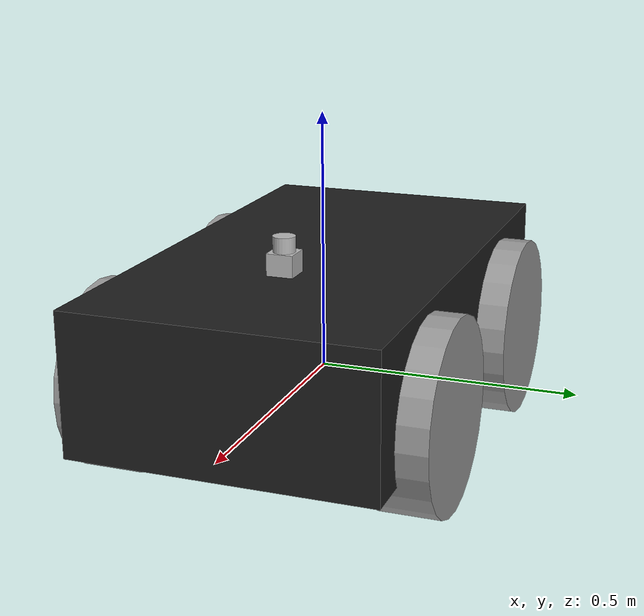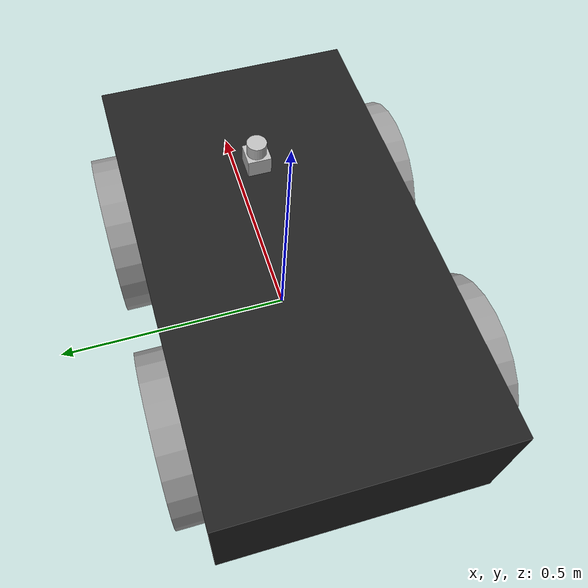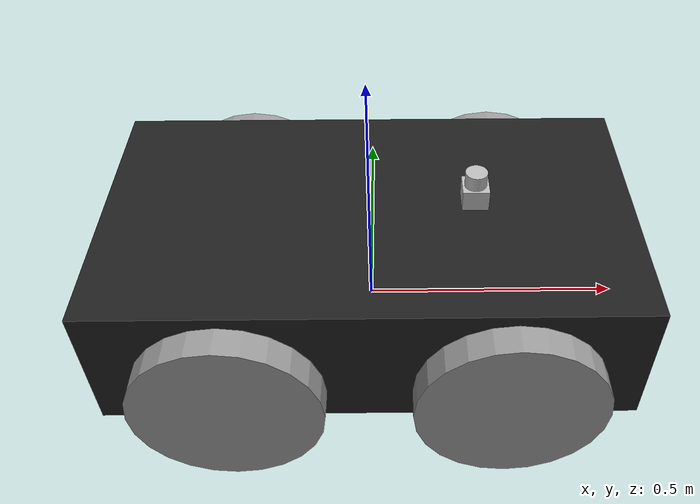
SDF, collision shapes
<?xml version='1.0'?>
<sdf version='1.7'>
  <model name='husky_lidar'>

  <!--################### LINKS ########################-->
    <link name='back_left_wheel'>
      <pose>-0.256 0.285475 0.035 0 -0 0</pose>
      <inertial>
        <mass>2.6357</mass>
        <pose>0 0 0 0 -0 0</pose>
        <inertia>
          <ixx>0.0246688</ixx>
          <ixy>0</ixy>
          <ixz>0</ixz>
          <iyy>0.0246688</iyy>
          <iyz>0</iyz>
          <izz>0.0441058</izz>
        </inertia>
      </inertial>
      <self_collide>0</self_collide>
      <enable_wind>0</enable_wind>
      <kinematic>0</kinematic>
      <visual name='back_left_wheel'>
        <pose>0 0 0 -3.14159 0 0</pose>
        <geometry>
          <mesh>
            <uri>model://husky/meshes/wheel.stl</uri>
          </mesh>
        </geometry>
        <material>
          <script>
            <name>Gazebo/Grey</name>
            <uri>__default__</uri>
          </script>
          <shader type='pixel'/>
        </material>
        <transparency>0</transparency>
        <cast_shadows>1</cast_shadows>
      </visual>
      <collision name='back_left_wheel_collision'>
        <laser_retro>0</laser_retro>
        <max_contacts>10</max_contacts>
        <pose>0 0 0 -1.5707 0 0</pose>
        <geometry>
          <cylinder>
            <radius>0.17775</radius>
            <length>0.1143</length>
          </cylinder>
        </geometry>
        <surface>
          <friction>
            <ode>
              <mu>100000</mu>
              <mu2>100000</mu2>
              <fdir1>0 0 0</fdir1>
              <slip1>0</slip1>
              <slip2>0</slip2>
            </ode>
            <torsional>
              <coefficient>1</coefficient>
              <patch_radius>0</patch_radius>
              <surface_radius>0</surface_radius>
              <use_patch_radius>1</use_patch_radius>
              <ode>
                <slip>0</slip>
              </ode>
            </torsional>
          </friction>
          <bounce>
            <restitution_coefficient>0</restitution_coefficient>
            <threshold>1e+06</threshold>
          </bounce>
          <contact>
            <collide_without_contact>0</collide_without_contact>
            <collide_without_contact_bitmask>1</collide_without_contact_bitmask>
            <collide_bitmask>1</collide_bitmask>
            <ode>
              <soft_cfm>0</soft_cfm>
              <soft_erp>0.2</soft_erp>
              <kp>1e+13</kp>
              <kd>1</kd>
              <max_vel>0.01</max_vel>
              <min_depth>0</min_depth>
            </ode>
            <bullet>
              <split_impulse>1</split_impulse>
              <split_impulse_penetration_threshold>-0.01</split_impulse_penetration_threshold>
              <soft_cfm>0</soft_cfm>
              <soft_erp>0.2</soft_erp>
              <kp>1e+13</kp>
              <kd>1</kd>
            </bullet>
          </contact>
        </surface>
      </collision>
    </link>

    <link name='back_right_wheel'>
      <pose>-0.256 -0.285475 0.035 0 -0 0</pose>
      <inertial>
        <mass>2.6357</mass>
        <pose>0 0 0 0 -0 0</pose>
        <inertia>
          <ixx>0.0246688</ixx>
          <ixy>0</ixy>
          <ixz>0</ixz>
          <iyy>0.0246688</iyy>
          <iyz>0</iyz>
          <izz>0.0441058</izz>
        </inertia>
      </inertial>
      <self_collide>0</self_collide>
      <enable_wind>0</enable_wind>
      <kinematic>0</kinematic>
      <visual name='back_right_wheel'>
        <pose>0 0 0 -3.14159 0 0</pose>
        <geometry>
          <mesh>
            <uri>model://husky/meshes/wheel.stl</uri>
          </mesh>
        </geometry>
        <material>
          <script>
            <name>Gazebo/Grey</name>
            <uri>__default__</uri>
          </script>
          <shader type='pixel'/>
        </material>
        <transparency>0</transparency>
        <cast_shadows>1</cast_shadows>
      </visual>
      <collision name='back_right_wheel_collision'>
        <laser_retro>0</laser_retro>
        <max_contacts>10</max_contacts>
        <pose>0 0 0 -1.5707 0 0</pose>
        <geometry>
          <cylinder>
            <radius>0.17775</radius>
            <length>0.1143</length>
          </cylinder>
        </geometry>
        <surface>
          <friction>
            <ode>
              <mu>100000</mu>
              <mu2>100000</mu2>
              <fdir1>0 0 0</fdir1>
              <slip1>0</slip1>
              <slip2>0</slip2>
            </ode>
            <torsional>
              <coefficient>1</coefficient>
              <patch_radius>0</patch_radius>
              <surface_radius>0</surface_radius>
              <use_patch_radius>1</use_patch_radius>
              <ode>
                <slip>0</slip>
              </ode>
            </torsional>
          </friction>
          <bounce>
            <restitution_coefficient>0</restitution_coefficient>
            <threshold>1e+06</threshold>
          </bounce>
          <contact>
            <collide_without_contact>0</collide_without_contact>
            <collide_without_contact_bitmask>1</collide_without_contact_bitmask>
            <collide_bitmask>1</collide_bitmask>
            <ode>
              <soft_cfm>0</soft_cfm>
              <soft_erp>0.2</soft_erp>
              <kp>1e+13</kp>
              <kd>1</kd>
              <max_vel>0.01</max_vel>
              <min_depth>0</min_depth>
            </ode>
            <bullet>
              <split_impulse>1</split_impulse>
              <split_impulse_penetration_threshold>-0.01</split_impulse_penetration_threshold>
              <soft_cfm>0</soft_cfm>
              <soft_erp>0.2</soft_erp>
              <kp>1e+13</kp>
              <kd>1</kd>
            </bullet>
          </contact>
        </surface>
      </collision>
    </link>

    <link name='base_link'>
      <inertial>
        <mass>33.855</mass>
        <pose>-0.085613 -0.00084 0.238145 0 -0 0</pose>
        <inertia>
          <ixx>2.2343</ixx>
          <ixy>-0.023642</ixy>
          <ixz>0.275174</ixz>
          <iyy>3.42518</iyy>
          <iyz>0.00239624</iyz>
          <izz>2.1241</izz>
        </inertia>
      </inertial>
      <self_collide>0</self_collide>
      <enable_wind>0</enable_wind>
      <kinematic>0</kinematic>
      <pose>0 0 0 0 -0 0</pose>
      <visual name='base'>
        <pose>0 0 0 0 -0 0</pose>
        <geometry>
          <mesh>
            <uri>model://husky/meshes/base_link.stl</uri>
          </mesh>
        </geometry>
        <material>
          <script>
            <name>Gazebo/FlatBlack</name>
            <uri>__default__</uri>
          </script>
          <shader type='pixel'/>
        </material>
        <transparency>0</transparency>
        <cast_shadows>1</cast_shadows>
      </visual>
      <visual name='top_plate'>
        <pose>0 0 0 0 -0 0</pose>
        <geometry>
          <mesh>
            <uri>model://husky/meshes/top_plate.stl</uri>
          </mesh>
        </geometry>
        <material>
          <script>
            <name>Gazebo/Yellow</name>
            <uri>__default__</uri>
          </script>
          <shader type='pixel'/>
        </material>
        <transparency>0</transparency>
        <cast_shadows>1</cast_shadows>
      </visual>
      <visual name='front_bumper'>
        <pose>0.47 0 0.091 0 -0 0</pose>
        <geometry>
          <mesh>
            <uri>model://husky/meshes/bumper.stl</uri>
          </mesh>
        </geometry>
        <material>
          <script>
            <name>Gazebo/FlatBlack</name>
            <uri>__default__</uri>
          </script>
          <shader type='pixel'/>
        </material>
        <transparency>0</transparency>
        <cast_shadows>1</cast_shadows>
      </visual>
      <visual name='rear_bumper'>
        <pose>-0.47 0 0.091 0 -0 3.141</pose>
        <geometry>
          <mesh>
            <uri>model://husky/meshes/bumper.stl</uri>
          </mesh>
        </geometry>
        <material>
          <script>
            <name>Gazebo/FlatBlack</name>
            <uri>__default__</uri>
          </script>
          <shader type='pixel'/>
        </material>
        <transparency>0</transparency>
        <cast_shadows>1</cast_shadows>
      </visual>
      <visual name='user_rail'>
        <pose>0.272 0 0.245 0 -0 0</pose>
        <geometry>
          <mesh>
            <uri>model://husky/meshes/user_rail.stl</uri>
          </mesh>
        </geometry>
        <material>
          <script>
            <name>Gazebo/Grey</name>
            <uri>__default__</uri>
          </script>
          <shader type='pixel'/>
        </material>
        <transparency>0</transparency>
        <cast_shadows>1</cast_shadows>
      </visual>
      <collision name='collision'>
        <laser_retro>0</laser_retro>
        <max_contacts>10</max_contacts>
        <pose>0 0 0.1 0 -0 0</pose>
        <geometry>
          <box>
            <size>1.0074 0.5709 0.2675</size>
          </box>
        </geometry>
        <surface>
          <friction>
            <ode>
              <mu>1</mu>
              <mu2>1</mu2>
              <fdir1>0 0 0</fdir1>
              <slip1>0</slip1>
              <slip2>0</slip2>
            </ode>
            <torsional>
              <coefficient>1</coefficient>
              <patch_radius>0</patch_radius>
              <surface_radius>0</surface_radius>
              <use_patch_radius>1</use_patch_radius>
              <ode>
                <slip>0</slip>
              </ode>
            </torsional>
          </friction>
          <bounce>
            <restitution_coefficient>0</restitution_coefficient>
            <threshold>1e+06</threshold>
          </bounce>
          <contact>
            <collide_without_contact>0</collide_without_contact>
            <collide_without_contact_bitmask>1</collide_without_contact_bitmask>
            <collide_bitmask>1</collide_bitmask>
            <ode>
              <soft_cfm>0</soft_cfm>
              <soft_erp>0.2</soft_erp>
              <kp>1e+13</kp>
              <kd>1</kd>
              <max_vel>0.01</max_vel>
              <min_depth>0</min_depth>
            </ode>
            <bullet>
              <split_impulse>1</split_impulse>
              <split_impulse_penetration_threshold>-0.01</split_impulse_penetration_threshold>
              <soft_cfm>0</soft_cfm>
              <soft_erp>0.2</soft_erp>
              <kp>1e+13</kp>
              <kd>1</kd>
            </bullet>
          </contact>
        </surface>
      </collision>
    </link>

    <link name='front_left_wheel'>
      <pose>0.256 0.285475 0.035 0 -0 0</pose>
      <inertial>
        <mass>2.6357</mass>
        <pose>0 0 0 0 -0 0</pose>
        <inertia>
          <ixx>0.0246688</ixx>
          <ixy>0</ixy>
          <ixz>0</ixz>
          <iyy>0.0246688</iyy>
          <iyz>0</iyz>
          <izz>0.0441058</izz>
        </inertia>
      </inertial>
      <self_collide>0</self_collide>
      <enable_wind>0</enable_wind>
      <kinematic>0</kinematic>
      <visual name='front_left_wheel'>
        <pose>0 0 0 -3.14159 0 0</pose>
        <geometry>
          <mesh>
            <uri>model://husky/meshes/wheel.stl</uri>
          </mesh>
        </geometry>
        <material>
          <script>
            <name>Gazebo/Grey</name>
            <uri>__default__</uri>
          </script>
          <shader type='pixel'/>
        </material>
        <transparency>0</transparency>
        <cast_shadows>1</cast_shadows>
      </visual>
      <collision name='front_left_wheel_collision'>
        <laser_retro>0</laser_retro>
        <max_contacts>10</max_contacts>
        <pose>0 0 0 -1.5707 0 0</pose>
        <geometry>
          <cylinder>
            <radius>0.17775</radius>
            <length>0.1143</length>
          </cylinder>
        </geometry>
        <surface>
          <friction>
            <ode>
              <mu>100000</mu>
              <mu2>100000</mu2>
              <fdir1>0 0 0</fdir1>
              <slip1>0</slip1>
              <slip2>0</slip2>
            </ode>
            <torsional>
              <coefficient>1</coefficient>
              <patch_radius>0</patch_radius>
              <surface_radius>0</surface_radius>
              <use_patch_radius>1</use_patch_radius>
              <ode>
                <slip>0</slip>
              </ode>
            </torsional>
          </friction>
          <bounce>
            <restitution_coefficient>0</restitution_coefficient>
            <threshold>1e+06</threshold>
          </bounce>
          <contact>
            <collide_without_contact>0</collide_without_contact>
            <collide_without_contact_bitmask>1</collide_without_contact_bitmask>
            <collide_bitmask>1</collide_bitmask>
            <ode>
              <soft_cfm>0</soft_cfm>
              <soft_erp>0.2</soft_erp>
              <kp>1e+13</kp>
              <kd>1</kd>
              <max_vel>0.01</max_vel>
              <min_depth>0</min_depth>
            </ode>
            <bullet>
              <split_impulse>1</split_impulse>
              <split_impulse_penetration_threshold>-0.01</split_impulse_penetration_threshold>
              <soft_cfm>0</soft_cfm>
              <soft_erp>0.2</soft_erp>
              <kp>1e+13</kp>
              <kd>1</kd>
            </bullet>
          </contact>
        </surface>
      </collision>
    </link>

    <link name='front_right_wheel'>
      <pose>0.256 -0.285475 0.035 0 -0 0</pose>
      <inertial>
        <mass>2.6357</mass>
        <pose>0 0 0 0 -0 0</pose>
        <inertia>
          <ixx>0.0246688</ixx>
          <ixy>0</ixy>
          <ixz>0</ixz>
          <iyy>0.0246688</iyy>
          <iyz>0</iyz>
          <izz>0.0441058</izz>
        </inertia>
      </inertial>
      <self_collide>0</self_collide>
      <enable_wind>0</enable_wind>
      <kinematic>0</kinematic>
      <visual name='front_right_wheel'>
        <pose>0 0 0 -3.14159 0 0</pose>
        <geometry>
          <mesh>
            <uri>model://husky/meshes/wheel.stl</uri>
          </mesh>
        </geometry>
        <material>
          <script>
            <name>Gazebo/Grey</name>
            <uri>__default__</uri>
          </script>
          <shader type='pixel'/>
        </material>
        <transparency>0</transparency>
        <cast_shadows>1</cast_shadows>
      </visual>
      <collision name='front_right_wheel_collision'>
        <laser_retro>0</laser_retro>
        <max_contacts>10</max_contacts>
        <pose>0 0 0 -1.5707 0 0</pose>
        <geometry>
          <cylinder>
            <radius>0.17775</radius>
            <length>0.1143</length>
          </cylinder>
        </geometry>
        <surface>
          <friction>
            <ode>
              <mu>100000</mu>
              <mu2>100000</mu2>
              <fdir1>0 0 0</fdir1>
              <slip1>0</slip1>
              <slip2>0</slip2>
            </ode>
            <torsional>
              <coefficient>1</coefficient>
              <patch_radius>0</patch_radius>
              <surface_radius>0</surface_radius>
              <use_patch_radius>1</use_patch_radius>
              <ode>
                <slip>0</slip>
              </ode>
            </torsional>
          </friction>
          <bounce>
            <restitution_coefficient>0</restitution_coefficient>
            <threshold>1e+06</threshold>
          </bounce>
          <contact>
            <collide_without_contact>0</collide_without_contact>
            <collide_without_contact_bitmask>1</collide_without_contact_bitmask>
            <collide_bitmask>1</collide_bitmask>
            <ode>
              <soft_cfm>0</soft_cfm>
              <soft_erp>0.2</soft_erp>
              <kp>1e+13</kp>
              <kd>1</kd>
              <max_vel>0.01</max_vel>
              <min_depth>0</min_depth>
            </ode>
            <bullet>
              <split_impulse>1</split_impulse>
              <split_impulse_penetration_threshold>-0.01</split_impulse_penetration_threshold>
              <soft_cfm>0</soft_cfm>
              <soft_erp>0.2</soft_erp>
              <kp>1e+13</kp>
              <kd>1</kd>
            </bullet>
          </contact>
        </surface>
      </collision>
    </link>

    <model name='hokuyo'>
      <pose>0.200151 0.002761 0.276533 0 -0 0</pose>
      <link name='lidar'>
        <inertial>
          <mass>0.1</mass>
          <pose>0 0 0 0 -0 0</pose>
          <inertia>
            <ixx>0</ixx>
            <ixy>0</ixy>
            <ixz>0</ixz>
            <iyy>0</iyy>
            <iyz>0</iyz>
            <izz>0</izz>
          </inertia>
        </inertial>
        <visual name='visual'>
          <geometry>
            <mesh>
              <uri>model://hokuyo/meshes/hokuyo.dae</uri>
            </mesh>
          </geometry>
        </visual>
        <collision name='collision-base'>
          <pose>0 0 -0.0145 0 -0 0</pose>
          <geometry>
            <box>
              <size>0.05 0.05 0.041</size>
            </box>
          </geometry>
          <surface>
            <contact>
              <ode/>
            </contact>
            <bounce/>
            <friction>
              <torsional>
                <ode/>
              </torsional>
              <ode/>
            </friction>
          </surface>
          <max_contacts>10</max_contacts>
        </collision>
        <collision name='collision-top'>
          <pose>0 0 0.0205 0 -0 0</pose>
          <geometry>
            <cylinder>
              <radius>0.021</radius>
              <length>0.029</length>
            </cylinder>
          </geometry>
          <surface>
            <contact>
              <ode/>
            </contact>
            <bounce/>
            <friction>
              <torsional>
                <ode/>
              </torsional>
              <ode/>
            </friction>
          </surface>
          <max_contacts>10</max_contacts>
        </collision>
        <sensor name='laser' type='ray'>
          <pose>0.01 0 0.0175 0 -0 0</pose>
          <ray>
            <scan>
              <horizontal>
                <samples>640</samples>
                <resolution>1</resolution>
                <min_angle>-2.26889</min_angle>
                <max_angle>2.2689</max_angle>
              </horizontal>
              <vertical>
                <samples>1</samples>
                <min_angle>0</min_angle>
                <max_angle>0</max_angle>
              </vertical>
            </scan>
            <range>
              <min>0.08</min>
              <max>10</max>
              <resolution>0.01</resolution>
            </range>
          </ray>
          <plugin name='laser' filename='libRayPlugin.so'/>
          <always_on>1</always_on>
          <update_rate>30</update_rate>
          <visualize>1</visualize>
        </sensor>
        <self_collide>0</self_collide>
        <enable_wind>0</enable_wind>
        <kinematic>0</kinematic>
        <topicName>/hokuyo/scan</topicName>
        <frameName>base_link</frameName>
      </link>
    </model>

<!--################### JOINTS ########################-->
    <joint name='back_left_joint' type='revolute'>
      <parent>base_link</parent>
      <child>back_left_wheel</child>
      <pose>0 0 0 0 -0 0</pose>
      <axis>
        <xyz>0 1 0</xyz>
        <limit>
          <lower>-1e+16</lower>
          <upper>1e+16</upper>
          <effort>-1</effort>
          <velocity>-1</velocity>
        </limit>
        <dynamics>
          <spring_reference>0</spring_reference>
          <spring_stiffness>0</spring_stiffness>
          <damping>0</damping>
          <friction>0</friction>
        </dynamics>
      </axis>
      <physics>
        <ode>
          <limit>
            <cfm>0</cfm>
            <erp>0.9</erp>
          </limit>
          <suspension>
            <cfm>0</cfm>
            <erp>0.2</erp>
          </suspension>
        </ode>
      </physics>
    </joint>

    <joint name='back_right_joint' type='revolute'>
      <parent>base_link</parent>
      <child>back_right_wheel</child>
      <pose>0 0 0 0 -0 0</pose>
      <axis>
        <xyz>0 1 0</xyz>
        <limit>
          <lower>-1e+16</lower>
          <upper>1e+16</upper>
          <effort>-1</effort>
          <velocity>-1</velocity>
        </limit>
        <dynamics>
          <spring_reference>0</spring_reference>
          <spring_stiffness>0</spring_stiffness>
          <damping>0</damping>
          <friction>0</friction>
        </dynamics>
      </axis>
      <physics>
        <ode>
          <limit>
            <cfm>0</cfm>
            <erp>0.9</erp>
          </limit>
          <suspension>
            <cfm>0</cfm>
            <erp>0.2</erp>
          </suspension>
        </ode>
      </physics>
    </joint>

    <joint name='front_left_joint' type='revolute'>
      <parent>base_link</parent>
      <child>front_left_wheel</child>
      <pose>0 0 0 0 -0 0</pose>
      <axis>
        <xyz>0 1 0</xyz>
        <limit>
          <lower>-1e+16</lower>
          <upper>1e+16</upper>
          <effort>-1</effort>
          <velocity>-1</velocity>
        </limit>
        <dynamics>
          <spring_reference>0</spring_reference>
          <spring_stiffness>0</spring_stiffness>
          <damping>0</damping>
          <friction>0</friction>
        </dynamics>
      </axis>
      <physics>
        <ode>
          <limit>
            <cfm>0</cfm>
            <erp>0.9</erp>
          </limit>
          <suspension>
            <cfm>0</cfm>
            <erp>0.2</erp>
          </suspension>
        </ode>
      </physics>
    </joint>

    <joint name='front_right_joint' type='revolute'>
      <parent>base_link</parent>
      <child>front_right_wheel</child>
      <pose>0 0 0 0 -0 0</pose>
      <axis>
        <xyz>0 1 0</xyz>
        <limit>
          <lower>-1e+16</lower>
          <upper>1e+16</upper>
          <effort>-1</effort>
          <velocity>-1</velocity>
        </limit>
        <dynamics>
          <spring_reference>0</spring_reference>
          <spring_stiffness>0</spring_stiffness>
          <damping>0</damping>
          <friction>0</friction>
        </dynamics>
      </axis>
      <physics>
        <ode>
          <limit>
            <cfm>0</cfm>
            <erp>0.9</erp>
          </limit>
          <suspension>
            <cfm>0</cfm>
            <erp>0.2</erp>
          </suspension>
        </ode>
      </physics>
    </joint>

    <joint name="lidar_joint" type="fixed">
      <parent>base_link</parent>
      <child>lidar</child>
      <pose>0 0 1 0 0 0.31416</pose>
      <axis>
        <xyz>0 0 1</xyz>
      </axis>
    </joint>

    <static>0</static>
    <allow_auto_disable>1</allow_auto_disable>

<!--################### PLUG-INS ########################-->
    <plugin name='husky_diff_controller' filename='libhusky_gazebo_plugins.so'>
      <alwaysOn>1</alwaysOn>
      <updateRate>100.0</updateRate>
      <backLeftJoint>back_left_joint</backLeftJoint>
      <backRightJoint>back_right_joint</backRightJoint>
      <frontLeftJoint>front_left_joint</frontLeftJoint>
      <frontRightJoint>front_right_joint</frontRightJoint>
      <wheelSeparation>0.5709</wheelSeparation>
      <wheelDiameter>0.3555</wheelDiameter>
      <torque>35</torque>
    </plugin>

    <plugin name='lidar' filename='hokuyu'>
      <gazebo reference='hokuyo_link'>
        <sensor type='gpu_ray' name='head_hokuyo_sensor'>
          <pose>0 0 0 0 0 0</pose>
          <visualize>0</visualize>
          <update_rate>40</update_rate>
          <ray>
            <scan>
              <horizontal>
                <samples>720</samples>
                <resolution>1</resolution>
                <min_angle>-1.570796</min_angle>
                <max_angle>1.570796</max_angle>
              </horizontal>
            </scan>
            <range>
              <min>0.10</min>
              <max>30.0</max>
              <resolution>0.01</resolution>
            </range>
            <noise>
              <type>gaussian</type>
              <mean>0.0</mean>
              <stddev>0.01</stddev>
            </noise>
          </ray>
          <plugin name='gazebo_ros_head_hokuyo_controller' filename='libgazebo_ros_gpu_laser.so'>
            <topicName>/hokuyo/scan</topicName>
            <frameName>base_link</frameName>
          </plugin>

        </sensor>
      </gazebo>
    </plugin>

  </model>
</sdf>
